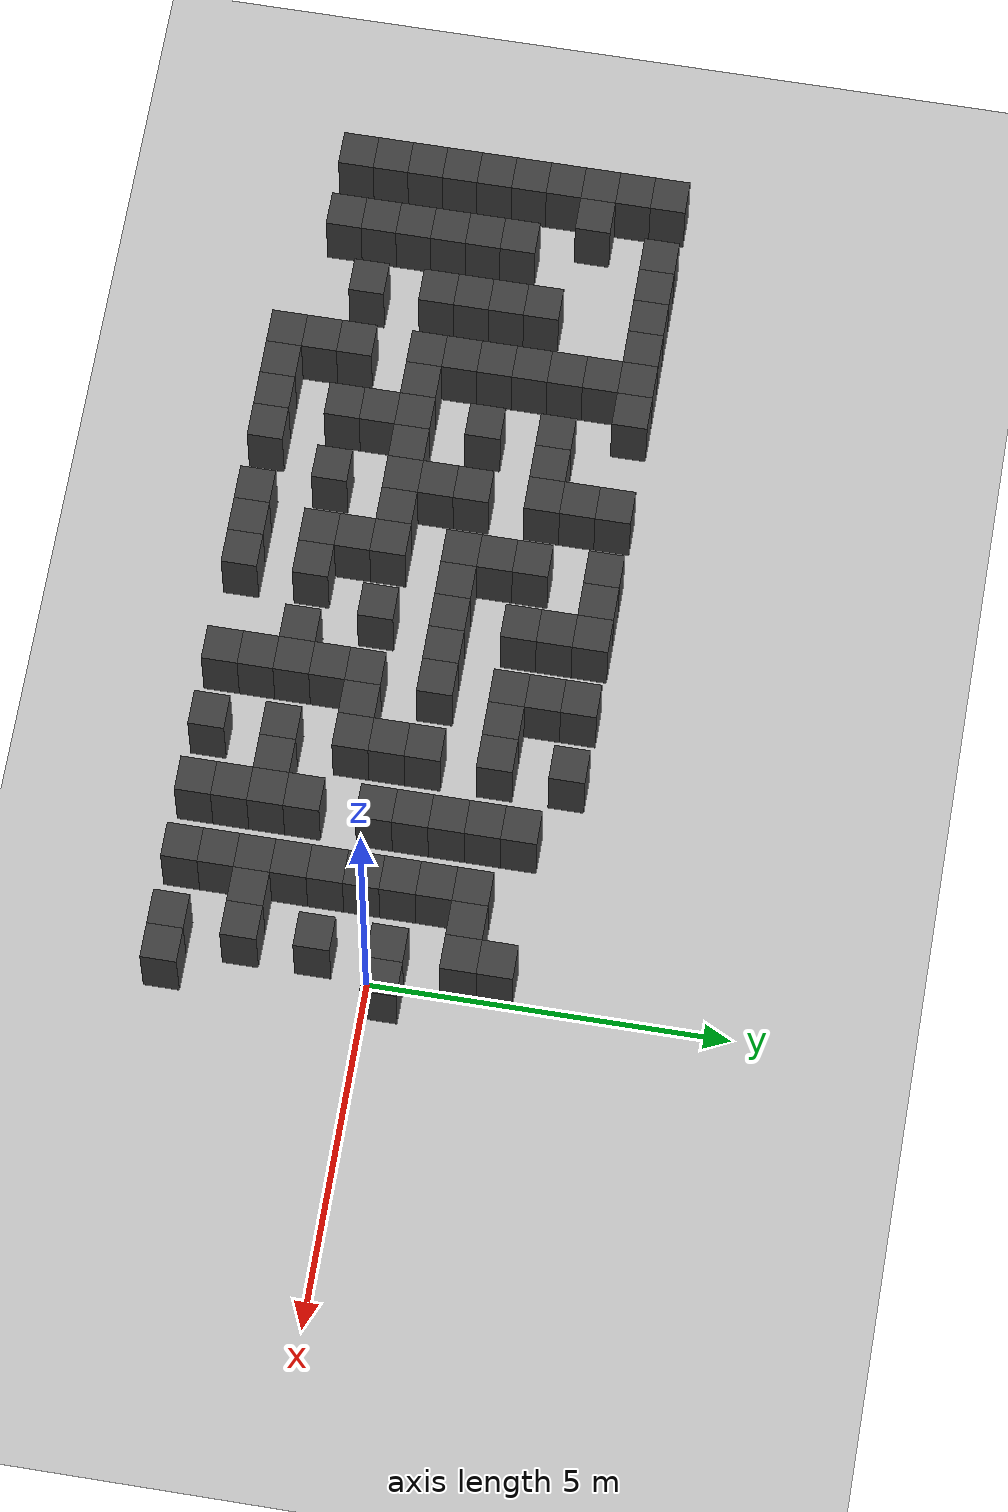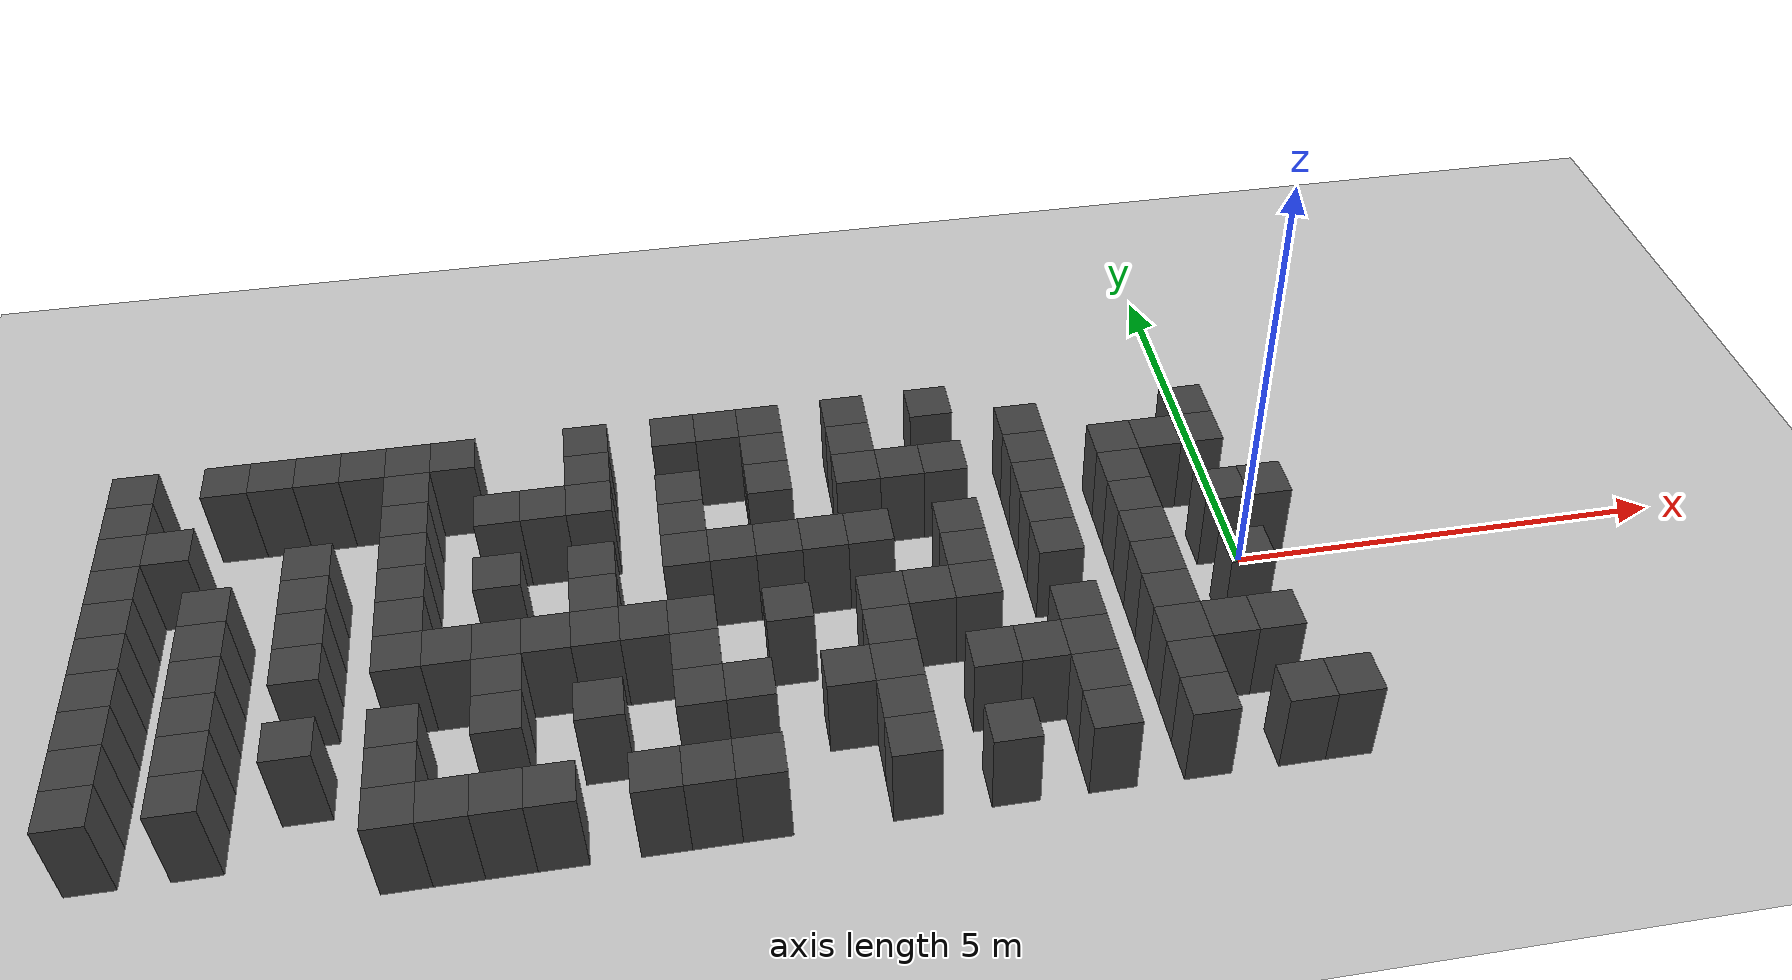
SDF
<sdf version="1.7">
 <world name="map_16048">
  <model name="ground_plane">
   <static>true</static>
   <link name="link">
    <collision name="collision">
     <geometry><plane><normal>0 0 1</normal><size>200 200</size></plane></geometry>
    </collision>
    <visual name="visual">
     <geometry><plane><normal>0 0 1</normal><size>200 200</size></plane></geometry>
     <material><ambient>0.8 0.8 0.8 1</ambient><diffuse>0.8 0.8 0.8 1</diffuse></material>
    </visual>
   </link>
  </model>
  <model name="maze_environment">
   <static>true</static>
   <link name="wall_479">
    <pose>-12.250 2.250 0.500 0 0 0</pose>
    <collision name="col"><geometry><box><size>0.5 0.5 1.0</size></box></geometry></collision>
    <visual name="vis">
     <geometry><box><size>0.5 0.5 1.0</size></box></geometry>
     <material><ambient>0.15 0.15 0.15 1</ambient><diffuse>0.25 0.25 0.25 1</diffuse></material>
    </visual>
   </link>
   <link name="wall_480">
    <pose>-11.250 2.250 0.500 0 0 0</pose>
    <collision name="col"><geometry><box><size>0.5 0.5 1.0</size></box></geometry></collision>
    <visual name="vis">
     <geometry><box><size>0.5 0.5 1.0</size></box></geometry>
     <material><ambient>0.15 0.15 0.15 1</ambient><diffuse>0.25 0.25 0.25 1</diffuse></material>
    </visual>
   </link>
   <link name="wall_481">
    <pose>-10.750 2.250 0.500 0 0 0</pose>
    <collision name="col"><geometry><box><size>0.5 0.5 1.0</size></box></geometry></collision>
    <visual name="vis">
     <geometry><box><size>0.5 0.5 1.0</size></box></geometry>
     <material><ambient>0.15 0.15 0.15 1</ambient><diffuse>0.25 0.25 0.25 1</diffuse></material>
    </visual>
   </link>
   <link name="wall_482">
    <pose>-10.250 2.250 0.500 0 0 0</pose>
    <collision name="col"><geometry><box><size>0.5 0.5 1.0</size></box></geometry></collision>
    <visual name="vis">
     <geometry><box><size>0.5 0.5 1.0</size></box></geometry>
     <material><ambient>0.15 0.15 0.15 1</ambient><diffuse>0.25 0.25 0.25 1</diffuse></material>
    </visual>
   </link>
   <link name="wall_483">
    <pose>-9.750 2.250 0.500 0 0 0</pose>
    <collision name="col"><geometry><box><size>0.5 0.5 1.0</size></box></geometry></collision>
    <visual name="vis">
     <geometry><box><size>0.5 0.5 1.0</size></box></geometry>
     <material><ambient>0.15 0.15 0.15 1</ambient><diffuse>0.25 0.25 0.25 1</diffuse></material>
    </visual>
   </link>
   <link name="wall_484">
    <pose>-9.250 2.250 0.500 0 0 0</pose>
    <collision name="col"><geometry><box><size>0.5 0.5 1.0</size></box></geometry></collision>
    <visual name="vis">
     <geometry><box><size>0.5 0.5 1.0</size></box></geometry>
     <material><ambient>0.15 0.15 0.15 1</ambient><diffuse>0.25 0.25 0.25 1</diffuse></material>
    </visual>
   </link>
   <link name="wall_485">
    <pose>-8.750 2.250 0.500 0 0 0</pose>
    <collision name="col"><geometry><box><size>0.5 0.5 1.0</size></box></geometry></collision>
    <visual name="vis">
     <geometry><box><size>0.5 0.5 1.0</size></box></geometry>
     <material><ambient>0.15 0.15 0.15 1</ambient><diffuse>0.25 0.25 0.25 1</diffuse></material>
    </visual>
   </link>
   <link name="wall_486">
    <pose>-7.250 2.250 0.500 0 0 0</pose>
    <collision name="col"><geometry><box><size>0.5 0.5 1.0</size></box></geometry></collision>
    <visual name="vis">
     <geometry><box><size>0.5 0.5 1.0</size></box></geometry>
     <material><ambient>0.15 0.15 0.15 1</ambient><diffuse>0.25 0.25 0.25 1</diffuse></material>
    </visual>
   </link>
   <link name="wall_487">
    <pose>-6.250 2.250 0.500 0 0 0</pose>
    <collision name="col"><geometry><box><size>0.5 0.5 1.0</size></box></geometry></collision>
    <visual name="vis">
     <geometry><box><size>0.5 0.5 1.0</size></box></geometry>
     <material><ambient>0.15 0.15 0.15 1</ambient><diffuse>0.25 0.25 0.25 1</diffuse></material>
    </visual>
   </link>
   <link name="wall_488">
    <pose>-5.750 2.250 0.500 0 0 0</pose>
    <collision name="col"><geometry><box><size>0.5 0.5 1.0</size></box></geometry></collision>
    <visual name="vis">
     <geometry><box><size>0.5 0.5 1.0</size></box></geometry>
     <material><ambient>0.15 0.15 0.15 1</ambient><diffuse>0.25 0.25 0.25 1</diffuse></material>
    </visual>
   </link>
   <link name="wall_489">
    <pose>-5.250 2.250 0.500 0 0 0</pose>
    <collision name="col"><geometry><box><size>0.5 0.5 1.0</size></box></geometry></collision>
    <visual name="vis">
     <geometry><box><size>0.5 0.5 1.0</size></box></geometry>
     <material><ambient>0.15 0.15 0.15 1</ambient><diffuse>0.25 0.25 0.25 1</diffuse></material>
    </visual>
   </link>
   <link name="wall_490">
    <pose>-4.250 2.250 0.500 0 0 0</pose>
    <collision name="col"><geometry><box><size>0.5 0.5 1.0</size></box></geometry></collision>
    <visual name="vis">
     <geometry><box><size>0.5 0.5 1.0</size></box></geometry>
     <material><ambient>0.15 0.15 0.15 1</ambient><diffuse>0.25 0.25 0.25 1</diffuse></material>
    </visual>
   </link>
   <link name="wall_491">
    <pose>-3.250 2.250 0.500 0 0 0</pose>
    <collision name="col"><geometry><box><size>0.5 0.5 1.0</size></box></geometry></collision>
    <visual name="vis">
     <geometry><box><size>0.5 0.5 1.0</size></box></geometry>
     <material><ambient>0.15 0.15 0.15 1</ambient><diffuse>0.25 0.25 0.25 1</diffuse></material>
    </visual>
   </link>
   <link name="wall_513">
    <pose>-12.250 1.750 0.500 0 0 0</pose>
    <collision name="col"><geometry><box><size>0.5 0.5 1.0</size></box></geometry></collision>
    <visual name="vis">
     <geometry><box><size>0.5 0.5 1.0</size></box></geometry>
     <material><ambient>0.15 0.15 0.15 1</ambient><diffuse>0.25 0.25 0.25 1</diffuse></material>
    </visual>
   </link>
   <link name="wall_514">
    <pose>-9.250 1.750 0.500 0 0 0</pose>
    <collision name="col"><geometry><box><size>0.5 0.5 1.0</size></box></geometry></collision>
    <visual name="vis">
     <geometry><box><size>0.5 0.5 1.0</size></box></geometry>
     <material><ambient>0.15 0.15 0.15 1</ambient><diffuse>0.25 0.25 0.25 1</diffuse></material>
    </visual>
   </link>
   <link name="wall_515">
    <pose>-7.250 1.750 0.500 0 0 0</pose>
    <collision name="col"><geometry><box><size>0.5 0.5 1.0</size></box></geometry></collision>
    <visual name="vis">
     <geometry><box><size>0.5 0.5 1.0</size></box></geometry>
     <material><ambient>0.15 0.15 0.15 1</ambient><diffuse>0.25 0.25 0.25 1</diffuse></material>
    </visual>
   </link>
   <link name="wall_516">
    <pose>-5.250 1.750 0.500 0 0 0</pose>
    <collision name="col"><geometry><box><size>0.5 0.5 1.0</size></box></geometry></collision>
    <visual name="vis">
     <geometry><box><size>0.5 0.5 1.0</size></box></geometry>
     <material><ambient>0.15 0.15 0.15 1</ambient><diffuse>0.25 0.25 0.25 1</diffuse></material>
    </visual>
   </link>
   <link name="wall_517">
    <pose>-4.250 1.750 0.500 0 0 0</pose>
    <collision name="col"><geometry><box><size>0.5 0.5 1.0</size></box></geometry></collision>
    <visual name="vis">
     <geometry><box><size>0.5 0.5 1.0</size></box></geometry>
     <material><ambient>0.15 0.15 0.15 1</ambient><diffuse>0.25 0.25 0.25 1</diffuse></material>
    </visual>
   </link>
   <link name="wall_518">
    <pose>-2.250 1.750 0.500 0 0 0</pose>
    <collision name="col"><geometry><box><size>0.5 0.5 1.0</size></box></geometry></collision>
    <visual name="vis">
     <geometry><box><size>0.5 0.5 1.0</size></box></geometry>
     <material><ambient>0.15 0.15 0.15 1</ambient><diffuse>0.25 0.25 0.25 1</diffuse></material>
    </visual>
   </link>
   <link name="wall_519">
    <pose>-0.250 1.750 0.500 0 0 0</pose>
    <collision name="col"><geometry><box><size>0.5 0.5 1.0</size></box></geometry></collision>
    <visual name="vis">
     <geometry><box><size>0.5 0.5 1.0</size></box></geometry>
     <material><ambient>0.15 0.15 0.15 1</ambient><diffuse>0.25 0.25 0.25 1</diffuse></material>
    </visual>
   </link>
   <link name="wall_528">
    <pose>-12.250 1.250 0.500 0 0 0</pose>
    <collision name="col"><geometry><box><size>0.5 0.5 1.0</size></box></geometry></collision>
    <visual name="vis">
     <geometry><box><size>0.5 0.5 1.0</size></box></geometry>
     <material><ambient>0.15 0.15 0.15 1</ambient><diffuse>0.25 0.25 0.25 1</diffuse></material>
    </visual>
   </link>
   <link name="wall_529">
    <pose>-11.750 1.250 0.500 0 0 0</pose>
    <collision name="col"><geometry><box><size>0.5 0.5 1.0</size></box></geometry></collision>
    <visual name="vis">
     <geometry><box><size>0.5 0.5 1.0</size></box></geometry>
     <material><ambient>0.15 0.15 0.15 1</ambient><diffuse>0.25 0.25 0.25 1</diffuse></material>
    </visual>
   </link>
   <link name="wall_530">
    <pose>-9.250 1.250 0.500 0 0 0</pose>
    <collision name="col"><geometry><box><size>0.5 0.5 1.0</size></box></geometry></collision>
    <visual name="vis">
     <geometry><box><size>0.5 0.5 1.0</size></box></geometry>
     <material><ambient>0.15 0.15 0.15 1</ambient><diffuse>0.25 0.25 0.25 1</diffuse></material>
    </visual>
   </link>
   <link name="wall_531">
    <pose>-8.250 1.250 0.500 0 0 0</pose>
    <collision name="col"><geometry><box><size>0.5 0.5 1.0</size></box></geometry></collision>
    <visual name="vis">
     <geometry><box><size>0.5 0.5 1.0</size></box></geometry>
     <material><ambient>0.15 0.15 0.15 1</ambient><diffuse>0.25 0.25 0.25 1</diffuse></material>
    </visual>
   </link>
   <link name="wall_532">
    <pose>-7.750 1.250 0.500 0 0 0</pose>
    <collision name="col"><geometry><box><size>0.5 0.5 1.0</size></box></geometry></collision>
    <visual name="vis">
     <geometry><box><size>0.5 0.5 1.0</size></box></geometry>
     <material><ambient>0.15 0.15 0.15 1</ambient><diffuse>0.25 0.25 0.25 1</diffuse></material>
    </visual>
   </link>
   <link name="wall_533">
    <pose>-7.250 1.250 0.500 0 0 0</pose>
    <collision name="col"><geometry><box><size>0.5 0.5 1.0</size></box></geometry></collision>
    <visual name="vis">
     <geometry><box><size>0.5 0.5 1.0</size></box></geometry>
     <material><ambient>0.15 0.15 0.15 1</ambient><diffuse>0.25 0.25 0.25 1</diffuse></material>
    </visual>
   </link>
   <link name="wall_534">
    <pose>-6.250 1.250 0.500 0 0 0</pose>
    <collision name="col"><geometry><box><size>0.5 0.5 1.0</size></box></geometry></collision>
    <visual name="vis">
     <geometry><box><size>0.5 0.5 1.0</size></box></geometry>
     <material><ambient>0.15 0.15 0.15 1</ambient><diffuse>0.25 0.25 0.25 1</diffuse></material>
    </visual>
   </link>
   <link name="wall_535">
    <pose>-5.250 1.250 0.500 0 0 0</pose>
    <collision name="col"><geometry><box><size>0.5 0.5 1.0</size></box></geometry></collision>
    <visual name="vis">
     <geometry><box><size>0.5 0.5 1.0</size></box></geometry>
     <material><ambient>0.15 0.15 0.15 1</ambient><diffuse>0.25 0.25 0.25 1</diffuse></material>
    </visual>
   </link>
   <link name="wall_536">
    <pose>-4.250 1.250 0.500 0 0 0</pose>
    <collision name="col"><geometry><box><size>0.5 0.5 1.0</size></box></geometry></collision>
    <visual name="vis">
     <geometry><box><size>0.5 0.5 1.0</size></box></geometry>
     <material><ambient>0.15 0.15 0.15 1</ambient><diffuse>0.25 0.25 0.25 1</diffuse></material>
    </visual>
   </link>
   <link name="wall_537">
    <pose>-3.750 1.250 0.500 0 0 0</pose>
    <collision name="col"><geometry><box><size>0.5 0.5 1.0</size></box></geometry></collision>
    <visual name="vis">
     <geometry><box><size>0.5 0.5 1.0</size></box></geometry>
     <material><ambient>0.15 0.15 0.15 1</ambient><diffuse>0.25 0.25 0.25 1</diffuse></material>
    </visual>
   </link>
   <link name="wall_538">
    <pose>-3.250 1.250 0.500 0 0 0</pose>
    <collision name="col"><geometry><box><size>0.5 0.5 1.0</size></box></geometry></collision>
    <visual name="vis">
     <geometry><box><size>0.5 0.5 1.0</size></box></geometry>
     <material><ambient>0.15 0.15 0.15 1</ambient><diffuse>0.25 0.25 0.25 1</diffuse></material>
    </visual>
   </link>
   <link name="wall_539">
    <pose>-2.250 1.250 0.500 0 0 0</pose>
    <collision name="col"><geometry><box><size>0.5 0.5 1.0</size></box></geometry></collision>
    <visual name="vis">
     <geometry><box><size>0.5 0.5 1.0</size></box></geometry>
     <material><ambient>0.15 0.15 0.15 1</ambient><diffuse>0.25 0.25 0.25 1</diffuse></material>
    </visual>
   </link>
   <link name="wall_540">
    <pose>-1.250 1.250 0.500 0 0 0</pose>
    <collision name="col"><geometry><box><size>0.5 0.5 1.0</size></box></geometry></collision>
    <visual name="vis">
     <geometry><box><size>0.5 0.5 1.0</size></box></geometry>
     <material><ambient>0.15 0.15 0.15 1</ambient><diffuse>0.25 0.25 0.25 1</diffuse></material>
    </visual>
   </link>
   <link name="wall_541">
    <pose>-0.750 1.250 0.500 0 0 0</pose>
    <collision name="col"><geometry><box><size>0.5 0.5 1.0</size></box></geometry></collision>
    <visual name="vis">
     <geometry><box><size>0.5 0.5 1.0</size></box></geometry>
     <material><ambient>0.15 0.15 0.15 1</ambient><diffuse>0.25 0.25 0.25 1</diffuse></material>
    </visual>
   </link>
   <link name="wall_542">
    <pose>-0.250 1.250 0.500 0 0 0</pose>
    <collision name="col"><geometry><box><size>0.5 0.5 1.0</size></box></geometry></collision>
    <visual name="vis">
     <geometry><box><size>0.5 0.5 1.0</size></box></geometry>
     <material><ambient>0.15 0.15 0.15 1</ambient><diffuse>0.25 0.25 0.25 1</diffuse></material>
    </visual>
   </link>
   <link name="wall_555">
    <pose>-12.250 0.750 0.500 0 0 0</pose>
    <collision name="col"><geometry><box><size>0.5 0.5 1.0</size></box></geometry></collision>
    <visual name="vis">
     <geometry><box><size>0.5 0.5 1.0</size></box></geometry>
     <material><ambient>0.15 0.15 0.15 1</ambient><diffuse>0.25 0.25 0.25 1</diffuse></material>
    </visual>
   </link>
   <link name="wall_556">
    <pose>-10.250 0.750 0.500 0 0 0</pose>
    <collision name="col"><geometry><box><size>0.5 0.5 1.0</size></box></geometry></collision>
    <visual name="vis">
     <geometry><box><size>0.5 0.5 1.0</size></box></geometry>
     <material><ambient>0.15 0.15 0.15 1</ambient><diffuse>0.25 0.25 0.25 1</diffuse></material>
    </visual>
   </link>
   <link name="wall_557">
    <pose>-9.250 0.750 0.500 0 0 0</pose>
    <collision name="col"><geometry><box><size>0.5 0.5 1.0</size></box></geometry></collision>
    <visual name="vis">
     <geometry><box><size>0.5 0.5 1.0</size></box></geometry>
     <material><ambient>0.15 0.15 0.15 1</ambient><diffuse>0.25 0.25 0.25 1</diffuse></material>
    </visual>
   </link>
   <link name="wall_558">
    <pose>-6.250 0.750 0.500 0 0 0</pose>
    <collision name="col"><geometry><box><size>0.5 0.5 1.0</size></box></geometry></collision>
    <visual name="vis">
     <geometry><box><size>0.5 0.5 1.0</size></box></geometry>
     <material><ambient>0.15 0.15 0.15 1</ambient><diffuse>0.25 0.25 0.25 1</diffuse></material>
    </visual>
   </link>
   <link name="wall_559">
    <pose>-2.250 0.750 0.500 0 0 0</pose>
    <collision name="col"><geometry><box><size>0.5 0.5 1.0</size></box></geometry></collision>
    <visual name="vis">
     <geometry><box><size>0.5 0.5 1.0</size></box></geometry>
     <material><ambient>0.15 0.15 0.15 1</ambient><diffuse>0.25 0.25 0.25 1</diffuse></material>
    </visual>
   </link>
   <link name="wall_560">
    <pose>-1.250 0.750 0.500 0 0 0</pose>
    <collision name="col"><geometry><box><size>0.5 0.5 1.0</size></box></geometry></collision>
    <visual name="vis">
     <geometry><box><size>0.5 0.5 1.0</size></box></geometry>
     <material><ambient>0.15 0.15 0.15 1</ambient><diffuse>0.25 0.25 0.25 1</diffuse></material>
    </visual>
   </link>
   <link name="wall_571">
    <pose>-12.250 0.250 0.500 0 0 0</pose>
    <collision name="col"><geometry><box><size>0.5 0.5 1.0</size></box></geometry></collision>
    <visual name="vis">
     <geometry><box><size>0.5 0.5 1.0</size></box></geometry>
     <material><ambient>0.15 0.15 0.15 1</ambient><diffuse>0.25 0.25 0.25 1</diffuse></material>
    </visual>
   </link>
   <link name="wall_572">
    <pose>-11.250 0.250 0.500 0 0 0</pose>
    <collision name="col"><geometry><box><size>0.5 0.5 1.0</size></box></geometry></collision>
    <visual name="vis">
     <geometry><box><size>0.5 0.5 1.0</size></box></geometry>
     <material><ambient>0.15 0.15 0.15 1</ambient><diffuse>0.25 0.25 0.25 1</diffuse></material>
    </visual>
   </link>
   <link name="wall_573">
    <pose>-10.250 0.250 0.500 0 0 0</pose>
    <collision name="col"><geometry><box><size>0.5 0.5 1.0</size></box></geometry></collision>
    <visual name="vis">
     <geometry><box><size>0.5 0.5 1.0</size></box></geometry>
     <material><ambient>0.15 0.15 0.15 1</ambient><diffuse>0.25 0.25 0.25 1</diffuse></material>
    </visual>
   </link>
   <link name="wall_574">
    <pose>-9.250 0.250 0.500 0 0 0</pose>
    <collision name="col"><geometry><box><size>0.5 0.5 1.0</size></box></geometry></collision>
    <visual name="vis">
     <geometry><box><size>0.5 0.5 1.0</size></box></geometry>
     <material><ambient>0.15 0.15 0.15 1</ambient><diffuse>0.25 0.25 0.25 1</diffuse></material>
    </visual>
   </link>
   <link name="wall_575">
    <pose>-8.250 0.250 0.500 0 0 0</pose>
    <collision name="col"><geometry><box><size>0.5 0.5 1.0</size></box></geometry></collision>
    <visual name="vis">
     <geometry><box><size>0.5 0.5 1.0</size></box></geometry>
     <material><ambient>0.15 0.15 0.15 1</ambient><diffuse>0.25 0.25 0.25 1</diffuse></material>
    </visual>
   </link>
   <link name="wall_576">
    <pose>-7.250 0.250 0.500 0 0 0</pose>
    <collision name="col"><geometry><box><size>0.5 0.5 1.0</size></box></geometry></collision>
    <visual name="vis">
     <geometry><box><size>0.5 0.5 1.0</size></box></geometry>
     <material><ambient>0.15 0.15 0.15 1</ambient><diffuse>0.25 0.25 0.25 1</diffuse></material>
    </visual>
   </link>
   <link name="wall_577">
    <pose>-6.250 0.250 0.500 0 0 0</pose>
    <collision name="col"><geometry><box><size>0.5 0.5 1.0</size></box></geometry></collision>
    <visual name="vis">
     <geometry><box><size>0.5 0.5 1.0</size></box></geometry>
     <material><ambient>0.15 0.15 0.15 1</ambient><diffuse>0.25 0.25 0.25 1</diffuse></material>
    </visual>
   </link>
   <link name="wall_578">
    <pose>-5.750 0.250 0.500 0 0 0</pose>
    <collision name="col"><geometry><box><size>0.5 0.5 1.0</size></box></geometry></collision>
    <visual name="vis">
     <geometry><box><size>0.5 0.5 1.0</size></box></geometry>
     <material><ambient>0.15 0.15 0.15 1</ambient><diffuse>0.25 0.25 0.25 1</diffuse></material>
    </visual>
   </link>
   <link name="wall_579">
    <pose>-5.250 0.250 0.500 0 0 0</pose>
    <collision name="col"><geometry><box><size>0.5 0.5 1.0</size></box></geometry></collision>
    <visual name="vis">
     <geometry><box><size>0.5 0.5 1.0</size></box></geometry>
     <material><ambient>0.15 0.15 0.15 1</ambient><diffuse>0.25 0.25 0.25 1</diffuse></material>
    </visual>
   </link>
   <link name="wall_580">
    <pose>-4.750 0.250 0.500 0 0 0</pose>
    <collision name="col"><geometry><box><size>0.5 0.5 1.0</size></box></geometry></collision>
    <visual name="vis">
     <geometry><box><size>0.5 0.5 1.0</size></box></geometry>
     <material><ambient>0.15 0.15 0.15 1</ambient><diffuse>0.25 0.25 0.25 1</diffuse></material>
    </visual>
   </link>
   <link name="wall_581">
    <pose>-4.250 0.250 0.500 0 0 0</pose>
    <collision name="col"><geometry><box><size>0.5 0.5 1.0</size></box></geometry></collision>
    <visual name="vis">
     <geometry><box><size>0.5 0.5 1.0</size></box></geometry>
     <material><ambient>0.15 0.15 0.15 1</ambient><diffuse>0.25 0.25 0.25 1</diffuse></material>
    </visual>
   </link>
   <link name="wall_582">
    <pose>-3.250 0.250 0.500 0 0 0</pose>
    <collision name="col"><geometry><box><size>0.5 0.5 1.0</size></box></geometry></collision>
    <visual name="vis">
     <geometry><box><size>0.5 0.5 1.0</size></box></geometry>
     <material><ambient>0.15 0.15 0.15 1</ambient><diffuse>0.25 0.25 0.25 1</diffuse></material>
    </visual>
   </link>
   <link name="wall_583">
    <pose>-2.250 0.250 0.500 0 0 0</pose>
    <collision name="col"><geometry><box><size>0.5 0.5 1.0</size></box></geometry></collision>
    <visual name="vis">
     <geometry><box><size>0.5 0.5 1.0</size></box></geometry>
     <material><ambient>0.15 0.15 0.15 1</ambient><diffuse>0.25 0.25 0.25 1</diffuse></material>
    </visual>
   </link>
   <link name="wall_584">
    <pose>-1.250 0.250 0.500 0 0 0</pose>
    <collision name="col"><geometry><box><size>0.5 0.5 1.0</size></box></geometry></collision>
    <visual name="vis">
     <geometry><box><size>0.5 0.5 1.0</size></box></geometry>
     <material><ambient>0.15 0.15 0.15 1</ambient><diffuse>0.25 0.25 0.25 1</diffuse></material>
    </visual>
   </link>
   <link name="wall_585">
    <pose>-0.250 0.250 0.500 0 0 0</pose>
    <collision name="col"><geometry><box><size>0.5 0.5 1.0</size></box></geometry></collision>
    <visual name="vis">
     <geometry><box><size>0.5 0.5 1.0</size></box></geometry>
     <material><ambient>0.15 0.15 0.15 1</ambient><diffuse>0.25 0.25 0.25 1</diffuse></material>
    </visual>
   </link>
   <link name="wall_586">
    <pose>0.250 0.250 0.500 0 0 0</pose>
    <collision name="col"><geometry><box><size>0.5 0.5 1.0</size></box></geometry></collision>
    <visual name="vis">
     <geometry><box><size>0.5 0.5 1.0</size></box></geometry>
     <material><ambient>0.15 0.15 0.15 1</ambient><diffuse>0.25 0.25 0.25 1</diffuse></material>
    </visual>
   </link>
   <link name="wall_603">
    <pose>-12.250 -0.250 0.500 0 0 0</pose>
    <collision name="col"><geometry><box><size>0.5 0.5 1.0</size></box></geometry></collision>
    <visual name="vis">
     <geometry><box><size>0.5 0.5 1.0</size></box></geometry>
     <material><ambient>0.15 0.15 0.15 1</ambient><diffuse>0.25 0.25 0.25 1</diffuse></material>
    </visual>
   </link>
   <link name="wall_604">
    <pose>-11.250 -0.250 0.500 0 0 0</pose>
    <collision name="col"><geometry><box><size>0.5 0.5 1.0</size></box></geometry></collision>
    <visual name="vis">
     <geometry><box><size>0.5 0.5 1.0</size></box></geometry>
     <material><ambient>0.15 0.15 0.15 1</ambient><diffuse>0.25 0.25 0.25 1</diffuse></material>
    </visual>
   </link>
   <link name="wall_605">
    <pose>-10.250 -0.250 0.500 0 0 0</pose>
    <collision name="col"><geometry><box><size>0.5 0.5 1.0</size></box></geometry></collision>
    <visual name="vis">
     <geometry><box><size>0.5 0.5 1.0</size></box></geometry>
     <material><ambient>0.15 0.15 0.15 1</ambient><diffuse>0.25 0.25 0.25 1</diffuse></material>
    </visual>
   </link>
   <link name="wall_606">
    <pose>-9.250 -0.250 0.500 0 0 0</pose>
    <collision name="col"><geometry><box><size>0.5 0.5 1.0</size></box></geometry></collision>
    <visual name="vis">
     <geometry><box><size>0.5 0.5 1.0</size></box></geometry>
     <material><ambient>0.15 0.15 0.15 1</ambient><diffuse>0.25 0.25 0.25 1</diffuse></material>
    </visual>
   </link>
   <link name="wall_607">
    <pose>-7.250 -0.250 0.500 0 0 0</pose>
    <collision name="col"><geometry><box><size>0.5 0.5 1.0</size></box></geometry></collision>
    <visual name="vis">
     <geometry><box><size>0.5 0.5 1.0</size></box></geometry>
     <material><ambient>0.15 0.15 0.15 1</ambient><diffuse>0.25 0.25 0.25 1</diffuse></material>
    </visual>
   </link>
   <link name="wall_608">
    <pose>-3.250 -0.250 0.500 0 0 0</pose>
    <collision name="col"><geometry><box><size>0.5 0.5 1.0</size></box></geometry></collision>
    <visual name="vis">
     <geometry><box><size>0.5 0.5 1.0</size></box></geometry>
     <material><ambient>0.15 0.15 0.15 1</ambient><diffuse>0.25 0.25 0.25 1</diffuse></material>
    </visual>
   </link>
   <link name="wall_609">
    <pose>-2.250 -0.250 0.500 0 0 0</pose>
    <collision name="col"><geometry><box><size>0.5 0.5 1.0</size></box></geometry></collision>
    <visual name="vis">
     <geometry><box><size>0.5 0.5 1.0</size></box></geometry>
     <material><ambient>0.15 0.15 0.15 1</ambient><diffuse>0.25 0.25 0.25 1</diffuse></material>
    </visual>
   </link>
   <link name="wall_610">
    <pose>-1.250 -0.250 0.500 0 0 0</pose>
    <collision name="col"><geometry><box><size>0.5 0.5 1.0</size></box></geometry></collision>
    <visual name="vis">
     <geometry><box><size>0.5 0.5 1.0</size></box></geometry>
     <material><ambient>0.15 0.15 0.15 1</ambient><diffuse>0.25 0.25 0.25 1</diffuse></material>
    </visual>
   </link>
   <link name="wall_617">
    <pose>-12.250 -0.750 0.500 0 0 0</pose>
    <collision name="col"><geometry><box><size>0.5 0.5 1.0</size></box></geometry></collision>
    <visual name="vis">
     <geometry><box><size>0.5 0.5 1.0</size></box></geometry>
     <material><ambient>0.15 0.15 0.15 1</ambient><diffuse>0.25 0.25 0.25 1</diffuse></material>
    </visual>
   </link>
   <link name="wall_618">
    <pose>-11.250 -0.750 0.500 0 0 0</pose>
    <collision name="col"><geometry><box><size>0.5 0.5 1.0</size></box></geometry></collision>
    <visual name="vis">
     <geometry><box><size>0.5 0.5 1.0</size></box></geometry>
     <material><ambient>0.15 0.15 0.15 1</ambient><diffuse>0.25 0.25 0.25 1</diffuse></material>
    </visual>
   </link>
   <link name="wall_619">
    <pose>-10.250 -0.750 0.500 0 0 0</pose>
    <collision name="col"><geometry><box><size>0.5 0.5 1.0</size></box></geometry></collision>
    <visual name="vis">
     <geometry><box><size>0.5 0.5 1.0</size></box></geometry>
     <material><ambient>0.15 0.15 0.15 1</ambient><diffuse>0.25 0.25 0.25 1</diffuse></material>
    </visual>
   </link>
   <link name="wall_620">
    <pose>-9.250 -0.750 0.500 0 0 0</pose>
    <collision name="col"><geometry><box><size>0.5 0.5 1.0</size></box></geometry></collision>
    <visual name="vis">
     <geometry><box><size>0.5 0.5 1.0</size></box></geometry>
     <material><ambient>0.15 0.15 0.15 1</ambient><diffuse>0.25 0.25 0.25 1</diffuse></material>
    </visual>
   </link>
   <link name="wall_621">
    <pose>-8.750 -0.750 0.500 0 0 0</pose>
    <collision name="col"><geometry><box><size>0.5 0.5 1.0</size></box></geometry></collision>
    <visual name="vis">
     <geometry><box><size>0.5 0.5 1.0</size></box></geometry>
     <material><ambient>0.15 0.15 0.15 1</ambient><diffuse>0.25 0.25 0.25 1</diffuse></material>
    </visual>
   </link>
   <link name="wall_622">
    <pose>-8.250 -0.750 0.500 0 0 0</pose>
    <collision name="col"><geometry><box><size>0.5 0.5 1.0</size></box></geometry></collision>
    <visual name="vis">
     <geometry><box><size>0.5 0.5 1.0</size></box></geometry>
     <material><ambient>0.15 0.15 0.15 1</ambient><diffuse>0.25 0.25 0.25 1</diffuse></material>
    </visual>
   </link>
   <link name="wall_623">
    <pose>-7.750 -0.750 0.500 0 0 0</pose>
    <collision name="col"><geometry><box><size>0.5 0.5 1.0</size></box></geometry></collision>
    <visual name="vis">
     <geometry><box><size>0.5 0.5 1.0</size></box></geometry>
     <material><ambient>0.15 0.15 0.15 1</ambient><diffuse>0.25 0.25 0.25 1</diffuse></material>
    </visual>
   </link>
   <link name="wall_624">
    <pose>-7.250 -0.750 0.500 0 0 0</pose>
    <collision name="col"><geometry><box><size>0.5 0.5 1.0</size></box></geometry></collision>
    <visual name="vis">
     <geometry><box><size>0.5 0.5 1.0</size></box></geometry>
     <material><ambient>0.15 0.15 0.15 1</ambient><diffuse>0.25 0.25 0.25 1</diffuse></material>
    </visual>
   </link>
   <link name="wall_625">
    <pose>-6.750 -0.750 0.500 0 0 0</pose>
    <collision name="col"><geometry><box><size>0.5 0.5 1.0</size></box></geometry></collision>
    <visual name="vis">
     <geometry><box><size>0.5 0.5 1.0</size></box></geometry>
     <material><ambient>0.15 0.15 0.15 1</ambient><diffuse>0.25 0.25 0.25 1</diffuse></material>
    </visual>
   </link>
   <link name="wall_626">
    <pose>-6.250 -0.750 0.500 0 0 0</pose>
    <collision name="col"><geometry><box><size>0.5 0.5 1.0</size></box></geometry></collision>
    <visual name="vis">
     <geometry><box><size>0.5 0.5 1.0</size></box></geometry>
     <material><ambient>0.15 0.15 0.15 1</ambient><diffuse>0.25 0.25 0.25 1</diffuse></material>
    </visual>
   </link>
   <link name="wall_627">
    <pose>-5.250 -0.750 0.500 0 0 0</pose>
    <collision name="col"><geometry><box><size>0.5 0.5 1.0</size></box></geometry></collision>
    <visual name="vis">
     <geometry><box><size>0.5 0.5 1.0</size></box></geometry>
     <material><ambient>0.15 0.15 0.15 1</ambient><diffuse>0.25 0.25 0.25 1</diffuse></material>
    </visual>
   </link>
   <link name="wall_628">
    <pose>-4.250 -0.750 0.500 0 0 0</pose>
    <collision name="col"><geometry><box><size>0.5 0.5 1.0</size></box></geometry></collision>
    <visual name="vis">
     <geometry><box><size>0.5 0.5 1.0</size></box></geometry>
     <material><ambient>0.15 0.15 0.15 1</ambient><diffuse>0.25 0.25 0.25 1</diffuse></material>
    </visual>
   </link>
   <link name="wall_629">
    <pose>-3.750 -0.750 0.500 0 0 0</pose>
    <collision name="col"><geometry><box><size>0.5 0.5 1.0</size></box></geometry></collision>
    <visual name="vis">
     <geometry><box><size>0.5 0.5 1.0</size></box></geometry>
     <material><ambient>0.15 0.15 0.15 1</ambient><diffuse>0.25 0.25 0.25 1</diffuse></material>
    </visual>
   </link>
   <link name="wall_630">
    <pose>-3.250 -0.750 0.500 0 0 0</pose>
    <collision name="col"><geometry><box><size>0.5 0.5 1.0</size></box></geometry></collision>
    <visual name="vis">
     <geometry><box><size>0.5 0.5 1.0</size></box></geometry>
     <material><ambient>0.15 0.15 0.15 1</ambient><diffuse>0.25 0.25 0.25 1</diffuse></material>
    </visual>
   </link>
   <link name="wall_631">
    <pose>-1.250 -0.750 0.500 0 0 0</pose>
    <collision name="col"><geometry><box><size>0.5 0.5 1.0</size></box></geometry></collision>
    <visual name="vis">
     <geometry><box><size>0.5 0.5 1.0</size></box></geometry>
     <material><ambient>0.15 0.15 0.15 1</ambient><diffuse>0.25 0.25 0.25 1</diffuse></material>
    </visual>
   </link>
   <link name="wall_632">
    <pose>-0.250 -0.750 0.500 0 0 0</pose>
    <collision name="col"><geometry><box><size>0.5 0.5 1.0</size></box></geometry></collision>
    <visual name="vis">
     <geometry><box><size>0.5 0.5 1.0</size></box></geometry>
     <material><ambient>0.15 0.15 0.15 1</ambient><diffuse>0.25 0.25 0.25 1</diffuse></material>
    </visual>
   </link>
   <link name="wall_652">
    <pose>-12.250 -1.250 0.500 0 0 0</pose>
    <collision name="col"><geometry><box><size>0.5 0.5 1.0</size></box></geometry></collision>
    <visual name="vis">
     <geometry><box><size>0.5 0.5 1.0</size></box></geometry>
     <material><ambient>0.15 0.15 0.15 1</ambient><diffuse>0.25 0.25 0.25 1</diffuse></material>
    </visual>
   </link>
   <link name="wall_653">
    <pose>-11.250 -1.250 0.500 0 0 0</pose>
    <collision name="col"><geometry><box><size>0.5 0.5 1.0</size></box></geometry></collision>
    <visual name="vis">
     <geometry><box><size>0.5 0.5 1.0</size></box></geometry>
     <material><ambient>0.15 0.15 0.15 1</ambient><diffuse>0.25 0.25 0.25 1</diffuse></material>
    </visual>
   </link>
   <link name="wall_654">
    <pose>-8.250 -1.250 0.500 0 0 0</pose>
    <collision name="col"><geometry><box><size>0.5 0.5 1.0</size></box></geometry></collision>
    <visual name="vis">
     <geometry><box><size>0.5 0.5 1.0</size></box></geometry>
     <material><ambient>0.15 0.15 0.15 1</ambient><diffuse>0.25 0.25 0.25 1</diffuse></material>
    </visual>
   </link>
   <link name="wall_655">
    <pose>-6.250 -1.250 0.500 0 0 0</pose>
    <collision name="col"><geometry><box><size>0.5 0.5 1.0</size></box></geometry></collision>
    <visual name="vis">
     <geometry><box><size>0.5 0.5 1.0</size></box></geometry>
     <material><ambient>0.15 0.15 0.15 1</ambient><diffuse>0.25 0.25 0.25 1</diffuse></material>
    </visual>
   </link>
   <link name="wall_656">
    <pose>-4.250 -1.250 0.500 0 0 0</pose>
    <collision name="col"><geometry><box><size>0.5 0.5 1.0</size></box></geometry></collision>
    <visual name="vis">
     <geometry><box><size>0.5 0.5 1.0</size></box></geometry>
     <material><ambient>0.15 0.15 0.15 1</ambient><diffuse>0.25 0.25 0.25 1</diffuse></material>
    </visual>
   </link>
   <link name="wall_657">
    <pose>-2.250 -1.250 0.500 0 0 0</pose>
    <collision name="col"><geometry><box><size>0.5 0.5 1.0</size></box></geometry></collision>
    <visual name="vis">
     <geometry><box><size>0.5 0.5 1.0</size></box></geometry>
     <material><ambient>0.15 0.15 0.15 1</ambient><diffuse>0.25 0.25 0.25 1</diffuse></material>
    </visual>
   </link>
   <link name="wall_658">
    <pose>-1.250 -1.250 0.500 0 0 0</pose>
    <collision name="col"><geometry><box><size>0.5 0.5 1.0</size></box></geometry></collision>
    <visual name="vis">
     <geometry><box><size>0.5 0.5 1.0</size></box></geometry>
     <material><ambient>0.15 0.15 0.15 1</ambient><diffuse>0.25 0.25 0.25 1</diffuse></material>
    </visual>
   </link>
   <link name="wall_666">
    <pose>-12.250 -1.750 0.500 0 0 0</pose>
    <collision name="col"><geometry><box><size>0.5 0.5 1.0</size></box></geometry></collision>
    <visual name="vis">
     <geometry><box><size>0.5 0.5 1.0</size></box></geometry>
     <material><ambient>0.15 0.15 0.15 1</ambient><diffuse>0.25 0.25 0.25 1</diffuse></material>
    </visual>
   </link>
   <link name="wall_667">
    <pose>-11.250 -1.750 0.500 0 0 0</pose>
    <collision name="col"><geometry><box><size>0.5 0.5 1.0</size></box></geometry></collision>
    <visual name="vis">
     <geometry><box><size>0.5 0.5 1.0</size></box></geometry>
     <material><ambient>0.15 0.15 0.15 1</ambient><diffuse>0.25 0.25 0.25 1</diffuse></material>
    </visual>
   </link>
   <link name="wall_668">
    <pose>-10.250 -1.750 0.500 0 0 0</pose>
    <collision name="col"><geometry><box><size>0.5 0.5 1.0</size></box></geometry></collision>
    <visual name="vis">
     <geometry><box><size>0.5 0.5 1.0</size></box></geometry>
     <material><ambient>0.15 0.15 0.15 1</ambient><diffuse>0.25 0.25 0.25 1</diffuse></material>
    </visual>
   </link>
   <link name="wall_669">
    <pose>-9.250 -1.750 0.500 0 0 0</pose>
    <collision name="col"><geometry><box><size>0.5 0.5 1.0</size></box></geometry></collision>
    <visual name="vis">
     <geometry><box><size>0.5 0.5 1.0</size></box></geometry>
     <material><ambient>0.15 0.15 0.15 1</ambient><diffuse>0.25 0.25 0.25 1</diffuse></material>
    </visual>
   </link>
   <link name="wall_670">
    <pose>-8.250 -1.750 0.500 0 0 0</pose>
    <collision name="col"><geometry><box><size>0.5 0.5 1.0</size></box></geometry></collision>
    <visual name="vis">
     <geometry><box><size>0.5 0.5 1.0</size></box></geometry>
     <material><ambient>0.15 0.15 0.15 1</ambient><diffuse>0.25 0.25 0.25 1</diffuse></material>
    </visual>
   </link>
   <link name="wall_671">
    <pose>-7.250 -1.750 0.500 0 0 0</pose>
    <collision name="col"><geometry><box><size>0.5 0.5 1.0</size></box></geometry></collision>
    <visual name="vis">
     <geometry><box><size>0.5 0.5 1.0</size></box></geometry>
     <material><ambient>0.15 0.15 0.15 1</ambient><diffuse>0.25 0.25 0.25 1</diffuse></material>
    </visual>
   </link>
   <link name="wall_672">
    <pose>-6.250 -1.750 0.500 0 0 0</pose>
    <collision name="col"><geometry><box><size>0.5 0.5 1.0</size></box></geometry></collision>
    <visual name="vis">
     <geometry><box><size>0.5 0.5 1.0</size></box></geometry>
     <material><ambient>0.15 0.15 0.15 1</ambient><diffuse>0.25 0.25 0.25 1</diffuse></material>
    </visual>
   </link>
   <link name="wall_673">
    <pose>-5.750 -1.750 0.500 0 0 0</pose>
    <collision name="col"><geometry><box><size>0.5 0.5 1.0</size></box></geometry></collision>
    <visual name="vis">
     <geometry><box><size>0.5 0.5 1.0</size></box></geometry>
     <material><ambient>0.15 0.15 0.15 1</ambient><diffuse>0.25 0.25 0.25 1</diffuse></material>
    </visual>
   </link>
   <link name="wall_674">
    <pose>-4.750 -1.750 0.500 0 0 0</pose>
    <collision name="col"><geometry><box><size>0.5 0.5 1.0</size></box></geometry></collision>
    <visual name="vis">
     <geometry><box><size>0.5 0.5 1.0</size></box></geometry>
     <material><ambient>0.15 0.15 0.15 1</ambient><diffuse>0.25 0.25 0.25 1</diffuse></material>
    </visual>
   </link>
   <link name="wall_675">
    <pose>-4.250 -1.750 0.500 0 0 0</pose>
    <collision name="col"><geometry><box><size>0.5 0.5 1.0</size></box></geometry></collision>
    <visual name="vis">
     <geometry><box><size>0.5 0.5 1.0</size></box></geometry>
     <material><ambient>0.15 0.15 0.15 1</ambient><diffuse>0.25 0.25 0.25 1</diffuse></material>
    </visual>
   </link>
   <link name="wall_676">
    <pose>-3.250 -1.750 0.500 0 0 0</pose>
    <collision name="col"><geometry><box><size>0.5 0.5 1.0</size></box></geometry></collision>
    <visual name="vis">
     <geometry><box><size>0.5 0.5 1.0</size></box></geometry>
     <material><ambient>0.15 0.15 0.15 1</ambient><diffuse>0.25 0.25 0.25 1</diffuse></material>
    </visual>
   </link>
   <link name="wall_677">
    <pose>-2.750 -1.750 0.500 0 0 0</pose>
    <collision name="col"><geometry><box><size>0.5 0.5 1.0</size></box></geometry></collision>
    <visual name="vis">
     <geometry><box><size>0.5 0.5 1.0</size></box></geometry>
     <material><ambient>0.15 0.15 0.15 1</ambient><diffuse>0.25 0.25 0.25 1</diffuse></material>
    </visual>
   </link>
   <link name="wall_678">
    <pose>-2.250 -1.750 0.500 0 0 0</pose>
    <collision name="col"><geometry><box><size>0.5 0.5 1.0</size></box></geometry></collision>
    <visual name="vis">
     <geometry><box><size>0.5 0.5 1.0</size></box></geometry>
     <material><ambient>0.15 0.15 0.15 1</ambient><diffuse>0.25 0.25 0.25 1</diffuse></material>
    </visual>
   </link>
   <link name="wall_679">
    <pose>-1.250 -1.750 0.500 0 0 0</pose>
    <collision name="col"><geometry><box><size>0.5 0.5 1.0</size></box></geometry></collision>
    <visual name="vis">
     <geometry><box><size>0.5 0.5 1.0</size></box></geometry>
     <material><ambient>0.15 0.15 0.15 1</ambient><diffuse>0.25 0.25 0.25 1</diffuse></material>
    </visual>
   </link>
   <link name="wall_680">
    <pose>-0.750 -1.750 0.500 0 0 0</pose>
    <collision name="col"><geometry><box><size>0.5 0.5 1.0</size></box></geometry></collision>
    <visual name="vis">
     <geometry><box><size>0.5 0.5 1.0</size></box></geometry>
     <material><ambient>0.15 0.15 0.15 1</ambient><diffuse>0.25 0.25 0.25 1</diffuse></material>
    </visual>
   </link>
   <link name="wall_681">
    <pose>-0.250 -1.750 0.500 0 0 0</pose>
    <collision name="col"><geometry><box><size>0.5 0.5 1.0</size></box></geometry></collision>
    <visual name="vis">
     <geometry><box><size>0.5 0.5 1.0</size></box></geometry>
     <material><ambient>0.15 0.15 0.15 1</ambient><diffuse>0.25 0.25 0.25 1</diffuse></material>
    </visual>
   </link>
   <link name="wall_701">
    <pose>-12.250 -2.250 0.500 0 0 0</pose>
    <collision name="col"><geometry><box><size>0.5 0.5 1.0</size></box></geometry></collision>
    <visual name="vis">
     <geometry><box><size>0.5 0.5 1.0</size></box></geometry>
     <material><ambient>0.15 0.15 0.15 1</ambient><diffuse>0.25 0.25 0.25 1</diffuse></material>
    </visual>
   </link>
   <link name="wall_702">
    <pose>-11.250 -2.250 0.500 0 0 0</pose>
    <collision name="col"><geometry><box><size>0.5 0.5 1.0</size></box></geometry></collision>
    <visual name="vis">
     <geometry><box><size>0.5 0.5 1.0</size></box></geometry>
     <material><ambient>0.15 0.15 0.15 1</ambient><diffuse>0.25 0.25 0.25 1</diffuse></material>
    </visual>
   </link>
   <link name="wall_703">
    <pose>-9.250 -2.250 0.500 0 0 0</pose>
    <collision name="col"><geometry><box><size>0.5 0.5 1.0</size></box></geometry></collision>
    <visual name="vis">
     <geometry><box><size>0.5 0.5 1.0</size></box></geometry>
     <material><ambient>0.15 0.15 0.15 1</ambient><diffuse>0.25 0.25 0.25 1</diffuse></material>
    </visual>
   </link>
   <link name="wall_704">
    <pose>-4.250 -2.250 0.500 0 0 0</pose>
    <collision name="col"><geometry><box><size>0.5 0.5 1.0</size></box></geometry></collision>
    <visual name="vis">
     <geometry><box><size>0.5 0.5 1.0</size></box></geometry>
     <material><ambient>0.15 0.15 0.15 1</ambient><diffuse>0.25 0.25 0.25 1</diffuse></material>
    </visual>
   </link>
   <link name="wall_705">
    <pose>-2.250 -2.250 0.500 0 0 0</pose>
    <collision name="col"><geometry><box><size>0.5 0.5 1.0</size></box></geometry></collision>
    <visual name="vis">
     <geometry><box><size>0.5 0.5 1.0</size></box></geometry>
     <material><ambient>0.15 0.15 0.15 1</ambient><diffuse>0.25 0.25 0.25 1</diffuse></material>
    </visual>
   </link>
   <link name="wall_706">
    <pose>-1.250 -2.250 0.500 0 0 0</pose>
    <collision name="col"><geometry><box><size>0.5 0.5 1.0</size></box></geometry></collision>
    <visual name="vis">
     <geometry><box><size>0.5 0.5 1.0</size></box></geometry>
     <material><ambient>0.15 0.15 0.15 1</ambient><diffuse>0.25 0.25 0.25 1</diffuse></material>
    </visual>
   </link>
   <link name="wall_717">
    <pose>-9.250 -2.750 0.500 0 0 0</pose>
    <collision name="col"><geometry><box><size>0.5 0.5 1.0</size></box></geometry></collision>
    <visual name="vis">
     <geometry><box><size>0.5 0.5 1.0</size></box></geometry>
     <material><ambient>0.15 0.15 0.15 1</ambient><diffuse>0.25 0.25 0.25 1</diffuse></material>
    </visual>
   </link>
   <link name="wall_718">
    <pose>-8.750 -2.750 0.500 0 0 0</pose>
    <collision name="col"><geometry><box><size>0.5 0.5 1.0</size></box></geometry></collision>
    <visual name="vis">
     <geometry><box><size>0.5 0.5 1.0</size></box></geometry>
     <material><ambient>0.15 0.15 0.15 1</ambient><diffuse>0.25 0.25 0.25 1</diffuse></material>
    </visual>
   </link>
   <link name="wall_719">
    <pose>-8.250 -2.750 0.500 0 0 0</pose>
    <collision name="col"><geometry><box><size>0.5 0.5 1.0</size></box></geometry></collision>
    <visual name="vis">
     <geometry><box><size>0.5 0.5 1.0</size></box></geometry>
     <material><ambient>0.15 0.15 0.15 1</ambient><diffuse>0.25 0.25 0.25 1</diffuse></material>
    </visual>
   </link>
   <link name="wall_720">
    <pose>-7.750 -2.750 0.500 0 0 0</pose>
    <collision name="col"><geometry><box><size>0.5 0.5 1.0</size></box></geometry></collision>
    <visual name="vis">
     <geometry><box><size>0.5 0.5 1.0</size></box></geometry>
     <material><ambient>0.15 0.15 0.15 1</ambient><diffuse>0.25 0.25 0.25 1</diffuse></material>
    </visual>
   </link>
   <link name="wall_721">
    <pose>-6.750 -2.750 0.500 0 0 0</pose>
    <collision name="col"><geometry><box><size>0.5 0.5 1.0</size></box></geometry></collision>
    <visual name="vis">
     <geometry><box><size>0.5 0.5 1.0</size></box></geometry>
     <material><ambient>0.15 0.15 0.15 1</ambient><diffuse>0.25 0.25 0.25 1</diffuse></material>
    </visual>
   </link>
   <link name="wall_722">
    <pose>-6.250 -2.750 0.500 0 0 0</pose>
    <collision name="col"><geometry><box><size>0.5 0.5 1.0</size></box></geometry></collision>
    <visual name="vis">
     <geometry><box><size>0.5 0.5 1.0</size></box></geometry>
     <material><ambient>0.15 0.15 0.15 1</ambient><diffuse>0.25 0.25 0.25 1</diffuse></material>
    </visual>
   </link>
   <link name="wall_723">
    <pose>-5.750 -2.750 0.500 0 0 0</pose>
    <collision name="col"><geometry><box><size>0.5 0.5 1.0</size></box></geometry></collision>
    <visual name="vis">
     <geometry><box><size>0.5 0.5 1.0</size></box></geometry>
     <material><ambient>0.15 0.15 0.15 1</ambient><diffuse>0.25 0.25 0.25 1</diffuse></material>
    </visual>
   </link>
   <link name="wall_724">
    <pose>-4.250 -2.750 0.500 0 0 0</pose>
    <collision name="col"><geometry><box><size>0.5 0.5 1.0</size></box></geometry></collision>
    <visual name="vis">
     <geometry><box><size>0.5 0.5 1.0</size></box></geometry>
     <material><ambient>0.15 0.15 0.15 1</ambient><diffuse>0.25 0.25 0.25 1</diffuse></material>
    </visual>
   </link>
   <link name="wall_725">
    <pose>-3.250 -2.750 0.500 0 0 0</pose>
    <collision name="col"><geometry><box><size>0.5 0.5 1.0</size></box></geometry></collision>
    <visual name="vis">
     <geometry><box><size>0.5 0.5 1.0</size></box></geometry>
     <material><ambient>0.15 0.15 0.15 1</ambient><diffuse>0.25 0.25 0.25 1</diffuse></material>
    </visual>
   </link>
   <link name="wall_726">
    <pose>-2.250 -2.750 0.500 0 0 0</pose>
    <collision name="col"><geometry><box><size>0.5 0.5 1.0</size></box></geometry></collision>
    <visual name="vis">
     <geometry><box><size>0.5 0.5 1.0</size></box></geometry>
     <material><ambient>0.15 0.15 0.15 1</ambient><diffuse>0.25 0.25 0.25 1</diffuse></material>
    </visual>
   </link>
   <link name="wall_727">
    <pose>-1.250 -2.750 0.500 0 0 0</pose>
    <collision name="col"><geometry><box><size>0.5 0.5 1.0</size></box></geometry></collision>
    <visual name="vis">
     <geometry><box><size>0.5 0.5 1.0</size></box></geometry>
     <material><ambient>0.15 0.15 0.15 1</ambient><diffuse>0.25 0.25 0.25 1</diffuse></material>
    </visual>
   </link>
   <link name="wall_728">
    <pose>-0.250 -2.750 0.500 0 0 0</pose>
    <collision name="col"><geometry><box><size>0.5 0.5 1.0</size></box></geometry></collision>
    <visual name="vis">
     <geometry><box><size>0.5 0.5 1.0</size></box></geometry>
     <material><ambient>0.15 0.15 0.15 1</ambient><diffuse>0.25 0.25 0.25 1</diffuse></material>
    </visual>
   </link>
   <link name="wall_729">
    <pose>0.250 -2.750 0.500 0 0 0</pose>
    <collision name="col"><geometry><box><size>0.5 0.5 1.0</size></box></geometry></collision>
    <visual name="vis">
     <geometry><box><size>0.5 0.5 1.0</size></box></geometry>
     <material><ambient>0.15 0.15 0.15 1</ambient><diffuse>0.25 0.25 0.25 1</diffuse></material>
    </visual>
   </link>
  </model>
 </world>
</sdf>
